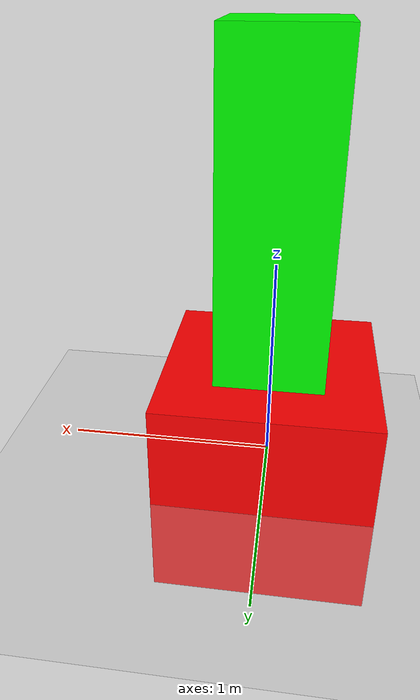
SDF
<?xml version="1.0" ?>
<sdf version="1.5">
  <world name="default">

    <!-- Define the model directly within the world file -->
    <model name="moving_joint_model">
      <static>false</static>

      <link name="base_link">
        <visual name="base_link_visual">
          <geometry>
            <box>
              <size>1 1 1</size>
            </box>
          </geometry>
          <material>
            <ambient>1 0 0 1</ambient> <!-- Red color -->
          </material>
        </visual>
        <collision name="base_link_collision">
          <geometry>
            <box>
              <size>1 1 1</size>
            </box>
          </geometry>
        </collision>
      </link>

      <link name="moving_link">
        <pose>0 0 1 0 0 0</pose> <!-- Position it above the base_link -->
        <visual name="moving_link_visual">
          <geometry>
            <box>
              <size>0.5 0.5 2.0</size>
            </box>
          </geometry>
          <material>
            <ambient>0 1 0 1</ambient> <!-- Green color -->
          </material>
        </visual>
        <collision name="moving_link_collision">
          <geometry>
            <box>
              <size>0.5 0.5 2.0</size>
            </box>
          </geometry>
        </collision>
      </link>

      <joint name="moving_joint" type="prismatic">
      <parent>base_link</parent>
      <child>moving_link</child>
      <pose>0 0 0 0 0 0</pose>
      <axis>
        <xyz>0 0 1</xyz>
        <limit>
          <lower>-1.0</lower>
          <upper>1.0</upper>
          <effort>100</effort>
          <velocity>1</velocity>
        </limit>
      </axis>
      </joint>

      <plugin name="joint_mover_plugin" filename="libjoint_mover_plugin.so"/>
    </model>

    <!-- Add a light source -->
    <light name="sun" type="directional">
      <cast_shadows>true</cast_shadows>
      <pose>0 0 10 0 -0 0</pose>
      <diffuse>1 1 1 1</diffuse>
      <specular>1 1 1 1</specular>
      <attenuation>
        <range>1000</range>
        <constant>0.9</constant>
        <linear>0.01</linear>
        <quadratic>0.001</quadratic>
      </attenuation>
      <direction>-0.5 0.5 -1</direction>
    </light>

    <!-- Ground plane -->
    <include>
      <uri>model://ground_plane</uri>
    </include>

    <!-- Physics engine -->
    <physics name="default_physics" type="ode">
      <gravity>0 0 -9.8</gravity>
    </physics>

  </world>
</sdf>
